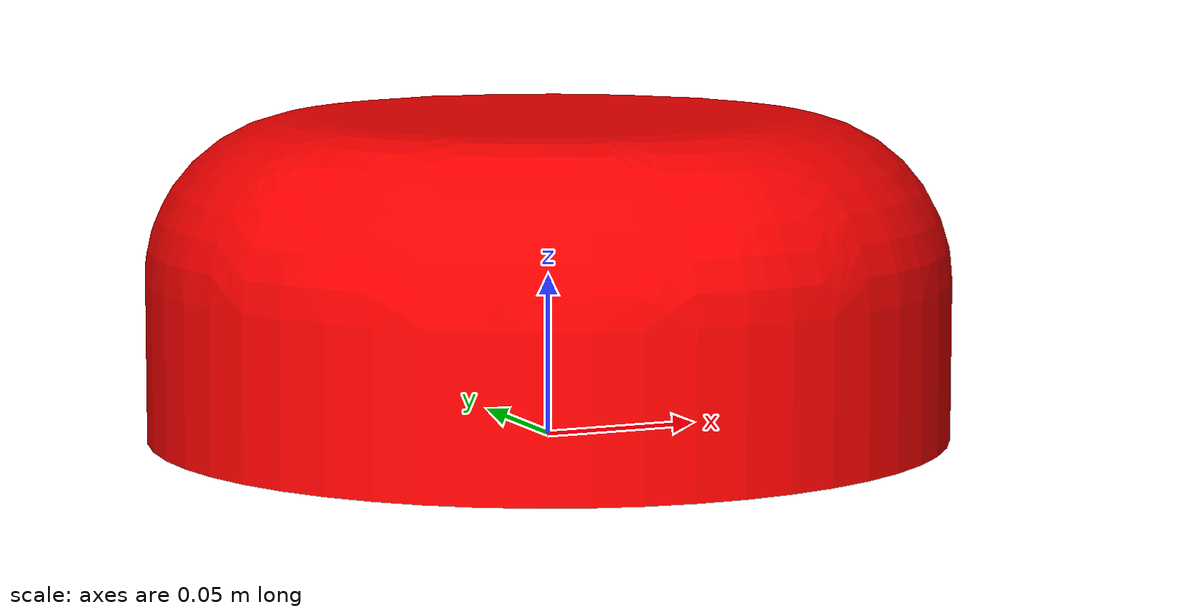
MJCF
<mujoco model="curved_surface_grey">
  <asset>
    <mesh file="meshes/capsule_1.stl" name="curved_surface_grey_bottle_mesh" scale="0.005 0.005 0.005"/>
  </asset>
  <worldbody>
    <body>
      <body name="object">
        <geom pos="0 0 0" rgba="1 0 0 1" mesh="curved_surface_grey_bottle_mesh" type="mesh" solimp="0.998 0.998 0.001" solref="0.001 1" density="50" friction="0.95 0.3 0.1" group="0"/>
        <site rgba="0 0 0 0" size="0.005" pos="0 0 5" name="test_site"/>
      </body>
      <site rgba="0 0 0 0" size="0.005" pos="0 0 0" name="bottom_site"/>
      <site rgba="0 0 0 0" size="0.005" pos="0 0 0" name="top_site"/>
      <site rgba="0 0 0 0" size="0.005" pos="0. 0. 0" name="horizontal_radius_site"/>
    </body>
  </worldbody>
</mujoco>
